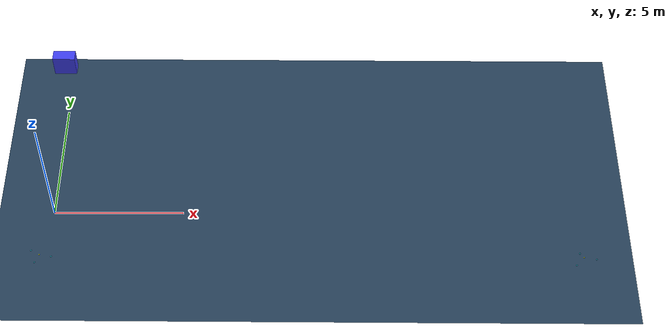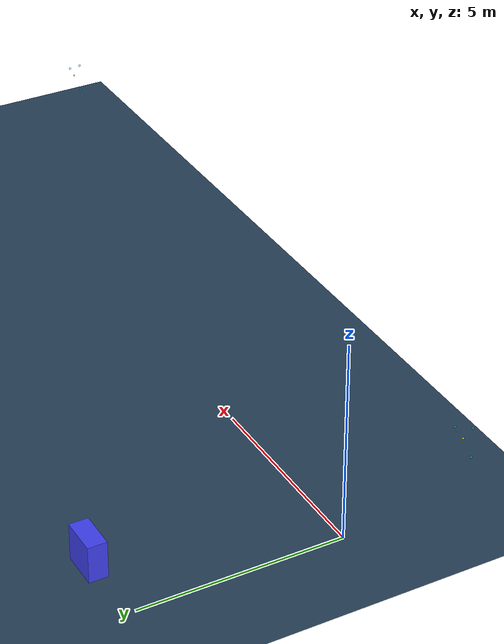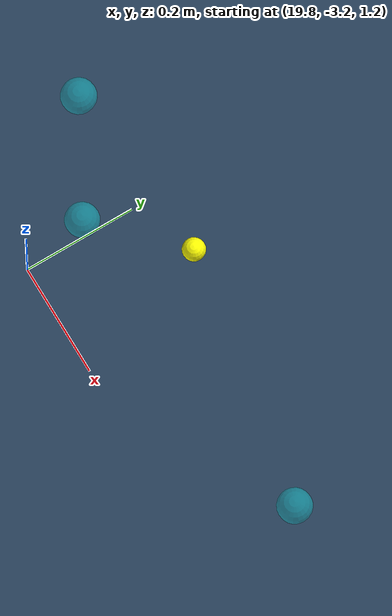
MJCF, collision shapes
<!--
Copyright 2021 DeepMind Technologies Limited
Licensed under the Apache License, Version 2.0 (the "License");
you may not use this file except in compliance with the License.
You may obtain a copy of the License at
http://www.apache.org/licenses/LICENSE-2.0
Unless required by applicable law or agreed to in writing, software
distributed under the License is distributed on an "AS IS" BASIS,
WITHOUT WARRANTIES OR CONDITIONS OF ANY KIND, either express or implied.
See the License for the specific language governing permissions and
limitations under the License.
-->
<mujoco model="3CamNodeParallel_UAV1">
  <option timestep="0.005"/>

  <visual>
    <headlight ambient="0.35 0.35 0.35" diffuse="0.65 0.65 0.65" specular="0.25 0.25 0.25"/>
    <map force="0.1" zfar="30"/>
    <rgba haze="0.15 0.25 0.35 1"/>
    <global offwidth="2560" offheight="1440" elevation="-20" azimuth="120"/>
    <quality offsamples="0"/>
  </visual>

  <statistic center="0 0 0.7"/>

  <asset>
    <texture type="skybox" builtin="gradient" rgb1=".3 .5 .7" rgb2="0 0 0" width="32" height="512"/>
    <texture name="grid" type="2d" builtin="checker" width="512" height="512" rgb1=".1 .2 .3" rgb2=".2 .3 .4"/>
    <material name="grid" texture="grid" texrepeat="1 1" texuniform="true" reflectance=".2"/>
    <mesh name="uav1_drone" file="../../../models/uav1_ascii/cgaxis_models_117_01_obj_drone.obj" scale="0.02 0.02 0.02"/>
    <texture name="uav1_tex" type="2d" file="../../../models/uav1_ascii/cgaxis_models_117_01.png"/>
    <material name="uav1_mat" texture="uav1_tex" texuniform="false"/>
  </asset>

  <worldbody>
    <geom name="floor" size="0 0 .05" type="plane" material="grid" condim="3"/>
    <light name="top" pos="0 0 6" diffuse="0.9 0.9 0.9" specular="0.15 0.15 0.15"/>
    <light name="fill" pos="0 -6 4" diffuse="0.75 0.75 0.75" specular="0.12 0.12 0.12"/>

    <body name="node01" pos="0 -3 1.6">
      <site name="node01_origin" pos="0 0 0" size="0.02" rgba="1 1 0 1"/>
      <camera name="node01_cam0" pos="0.45 0 0.0" xyaxes="1 0 0  0 0 1" fovy="60"/>
      <camera name="node01_cam1" pos="-0.225 0 0.389711" xyaxes="1 0 0  0 0 1" fovy="60"/>
      <camera name="node01_cam2" pos="-0.225 0 -0.389711" xyaxes="1 0 0  0 0 1" fovy="60"/>
      <geom name="node01_cam0_marker" type="sphere" pos="0.45 -0.08 0.0" size="0.03" rgba="0 1 1 0.35" contype="0" conaffinity="0"/>
      <geom name="node01_cam1_marker" type="sphere" pos="-0.225 -0.08 0.389711" size="0.03" rgba="0 1 1 0.35" contype="0" conaffinity="0"/>
      <geom name="node01_cam2_marker" type="sphere" pos="-0.225 -0.08 -0.389711" size="0.03" rgba="0 1 1 0.35" contype="0" conaffinity="0"/>
    </body>

    <body name="node02" pos="20 -3 1.6">
      <site name="node02_origin" pos="0 0 0" size="0.02" rgba="1 1 0 1"/>
      <camera name="node02_cam0" pos="0.45 0 0.0" xyaxes="1 0 0  0 0 1" fovy="60"/>
      <camera name="node02_cam1" pos="-0.225 0 0.389711" xyaxes="1 0 0  0 0 1" fovy="60"/>
      <camera name="node02_cam2" pos="-0.225 0 -0.389711" xyaxes="1 0 0  0 0 1" fovy="60"/>
      <geom name="node02_cam0_marker" type="sphere" pos="0.45 -0.08 0.0" size="0.03" rgba="0 1 1 0.35" contype="0" conaffinity="0"/>
      <geom name="node02_cam1_marker" type="sphere" pos="-0.225 -0.08 0.389711" size="0.03" rgba="0 1 1 0.35" contype="0" conaffinity="0"/>
      <geom name="node02_cam2_marker" type="sphere" pos="-0.225 -0.08 -0.389711" size="0.03" rgba="0 1 1 0.35" contype="0" conaffinity="0"/>
    </body>

    <body name="target" pos="0 6 2.0">
      <freejoint/>
      <inertial pos="0 0 0" mass="1" diaginertia="0.1 0.1 0.1"/>
      <geom name="target_uav1_visual" type="mesh" mesh="uav1_drone" quat="0.7071068 0.7071068 0 0" material="uav1_mat" rgba="1 1 1 1" contype="0" conaffinity="0" group="1"/>
      <geom name="target_uav1_collision" type="box" size="0.44 0.22 0.44" rgba="0.25 0.25 0.95 0.15" contype="1" conaffinity="1" group="3"/>
    </body>
  </worldbody>
</mujoco>
